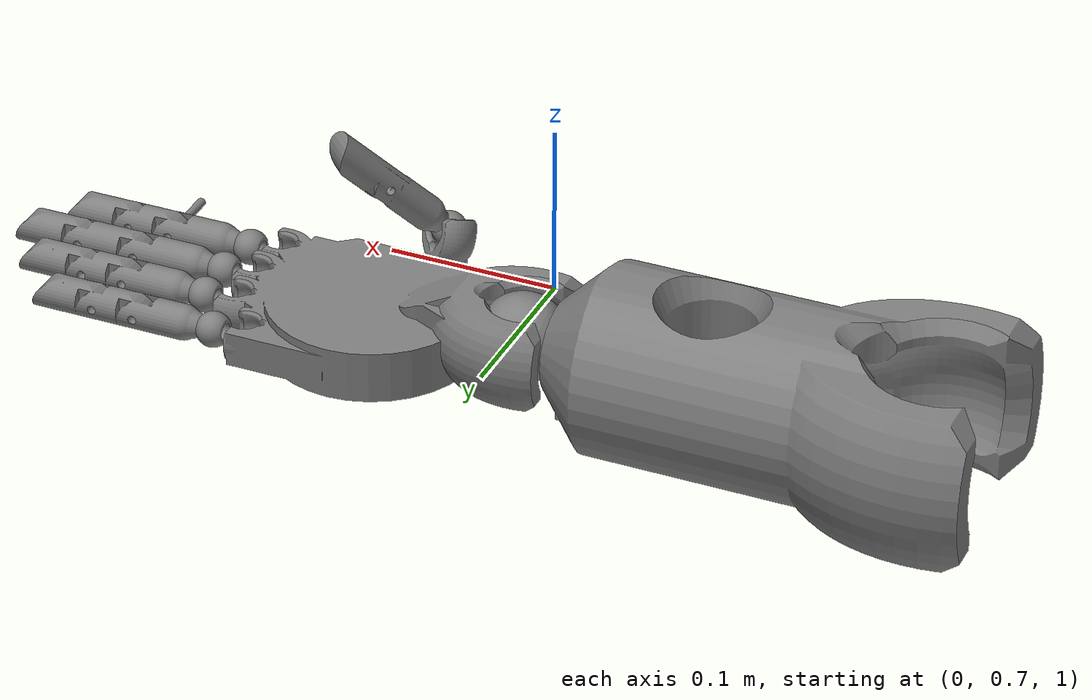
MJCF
<mujoco model="hand">
  <asset>
    <mesh name="hand_base"       file="hand/hand_base_o.stl"         scale="0.01 0.01 0.01"/>
    <mesh name="wrist"           file="hand/hand_wrist_o.stl"        scale="0.01 0.01 0.01"/>
    <mesh name="finger1"         file="hand/hand_finger1_o.stl"      scale="0.01 0.01 0.01"/>
    <mesh name="finger2"         file="hand/hand_finger2_o.stl"      scale="0.01 0.01 0.01"/>
    <mesh name="finger3"         file="hand/hand_finger3_o.stl"      scale="0.01 0.01 0.01"/>
    <mesh name="finger4"         file="hand/hand_finger4_o.stl"      scale="0.01 0.01 0.01"/>
    <mesh name="finger5"         file="hand/hand_finger5_o.stl"      scale="0.01 0.01 0.01"/>
  </asset>

  <worldbody>
    <body name="torso" pos="0.0 0.8 1.0" euler="0 0 0">
      <geom type="mesh" mesh="hand_base"/>
      <body name="wrist_link" pos="0.0 0.0 0.0">
        <!--joint axis="0 1 0" name="joint1" pos="-0.03 0.0 0.03" range="-1.0 1.0" type="hinge"/-->
        <geom type="mesh" mesh="wrist"/>
      </body>
      <body name="finger1_link" pos="0.0 0.0 0.0">
        <!--joint axis="0 1 0" name="joint2" pos="0.0524 -0.0596 0.0539" range="-1.0 1.0" type="hinge"/-->
        <geom type="mesh" mesh="finger1"/>
      </body>
      <body name="finger2_link" pos="0.02 0.0 0.0">
        <joint axis="0 1 0" name="joint3" pos="0.1481 -0.0425 0.01" range="-1.0 1.0" type="hinge"/>
        <geom type="mesh" mesh="finger2"/>
      </body>
      <body name="finger3_link" pos="0.02 0.0 0.0">
        <joint axis="0 1 0" name="joint4" pos="0.1506 -0.0150 0.01" range="-1.0 1.0" type="hinge"/>
        <geom type="mesh" mesh="finger3"/>
      </body>
      <body name="finger4_link" pos="0.02 0.0 0.0">
        <joint axis="0 1 0" name="joint5" pos="0.1481 .0125 0.0" range="-1.0 1.0" type="hinge"/>
        <geom type="mesh" mesh="finger4"/>
      </body>
      <body name="finger5_link" pos="0.02 0.0 0.0">
        <joint axis="0 1 0" name="joint6" pos="0.1282 0.0425 0.01" range="-1.0 1.0" type="hinge"/>
        <geom type="mesh" mesh="finger5"/>
      </body>
    </body>
  </worldbody>

  <actuator>
    <motor gear="200" joint="joint3" name="joint3"/>
    <motor gear="200" joint="joint4" name="joint4"/>
    <motor gear="200" joint="joint5" name="joint5"/>
    <motor gear="200" joint="joint6" name="joint6"/>
  </actuator>

</mujoco>
